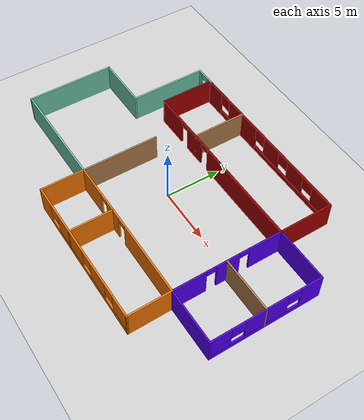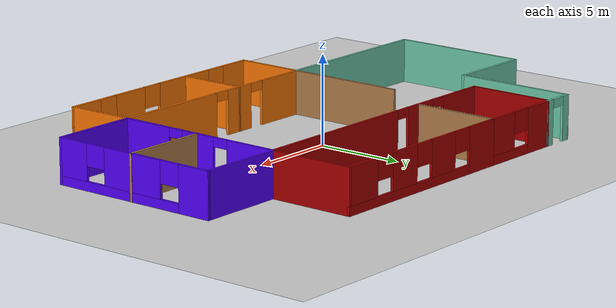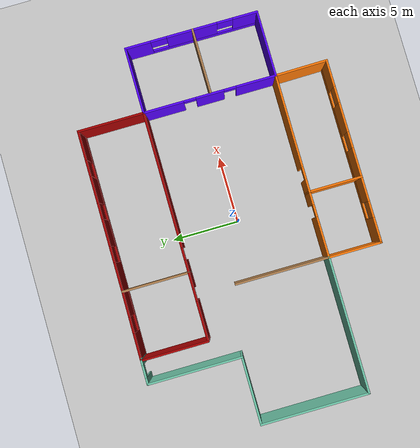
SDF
<sdf version="1.6">
 <world name="default">
  <model name="ground_plane">
   <static>1</static>
   <link name="link">
    <collision name="collision">
     <geometry><plane><normal>0 0 1</normal><size>100 100</size></plane></geometry>
     <surface>
      <contact><collide_bitmask>65535</collide_bitmask></contact>
      <friction><ode><mu>100</mu><mu2>50</mu2></ode></friction>
     </surface>
    </collision>
    <visual name="visual">
     <cast_shadows>0</cast_shadows>
     <geometry><plane><normal>0 0 1</normal><size>100 100</size></plane></geometry>
     <material>
      <script><uri>file://media/materials/scripts/gazebo.material</uri><name>Gazebo/Grey</name></script>
     </material>
    </visual>
   </link>
  </model>
  <model name="Building">
   <link name="Wall_10">
    <collision name="Wall_10_Collision">
     <geometry><box><size>5 0.15 2.5</size></box></geometry>
     <pose>0 0 1.25 0 -0 0</pose>
    </collision>
    <visual name="Wall_10_Visual">
     <pose>0 0 1.25 0 -0 0</pose>
     <geometry><box><size>5 0.15 2.5</size></box></geometry>
     <material>
      <script><uri>file://media/materials/scripts/gazebo.material</uri><name>Gazebo/Grey</name></script>
      <ambient>0.666667 0 0 1</ambient>
     </material>
     <meta><layer>0</layer></meta>
    </visual>
    <pose>9.27018 6.82319 0 0 0 -1.5708</pose>
   </link>
   <link name="Wall_11">
    <collision name="Wall_11_Collision">
     <geometry><box><size>5 0.15 2.5</size></box></geometry>
     <pose>0 0 1.25 0 -0 0</pose>
    </collision>
    <visual name="Wall_11_Visual">
     <pose>0 0 1.25 0 -0 0</pose>
     <geometry><box><size>5 0.15 2.5</size></box></geometry>
     <material>
      <script><uri>file://media/materials/scripts/gazebo.material</uri><name>Gazebo/Grey</name></script>
      <ambient>0.333333 0 1 1</ambient>
     </material>
     <meta><layer>0</layer></meta>
    </visual>
    <pose>11.6952 4.39843 0 0 -0 9.8e-05</pose>
   </link>
   <link name="Wall_12">
    <pose>14.1202 -0.52633 0 0 0 -1.5708</pose>
    <visual name="Wall_12_Visual_0">
     <pose>-4.03442 0 1.25 0 -0 0</pose>
     <geometry><box><size>1.93115 0.15 2.5</size></box></geometry>
     <material>
      <script><uri>file://media/materials/scripts/gazebo.material</uri><name>Gazebo/Grey</name></script>
      <ambient>0.333333 0 1 1</ambient>
     </material>
     <meta><layer>0</layer></meta>
    </visual>
    <collision name="Wall_12_Collision_0">
     <geometry><box><size>1.93115 0.15 2.5</size></box></geometry>
     <pose>-4.03442 0 1.25 0 -0 0</pose>
    </collision>
    <visual name="Wall_12_Visual_1">
     <pose>0.965577 0 0.25 0 -0 0</pose>
     <geometry><box><size>8.06885 0.15 0.5</size></box></geometry>
     <material>
      <script><uri>file://media/materials/scripts/gazebo.material</uri><name>Gazebo/Grey</name></script>
      <ambient>0.333333 0 1 1</ambient>
     </material>
     <meta><layer>0</layer></meta>
    </visual>
    <collision name="Wall_12_Collision_1">
     <geometry><box><size>8.06885 0.15 0.5</size></box></geometry>
     <pose>0.965577 0 0.25 0 -0 0</pose>
    </collision>
    <visual name="Wall_12_Visual_2">
     <pose>0.015256 0 1.5 0 -0 0</pose>
     <geometry><box><size>3.7682 0.15 2</size></box></geometry>
     <material>
      <script><uri>file://media/materials/scripts/gazebo.material</uri><name>Gazebo/Grey</name></script>
      <ambient>0.333333 0 1 1</ambient>
     </material>
     <meta><layer>0</layer></meta>
    </visual>
    <collision name="Wall_12_Collision_2">
     <geometry><box><size>3.7682 0.15 2</size></box></geometry>
     <pose>0.015256 0 1.5 0 -0 0</pose>
    </collision>
    <visual name="Wall_12_Visual_3">
     <pose>4.04968 0 1.5 0 -0 0</pose>
     <geometry><box><size>1.90064 0.15 2</size></box></geometry>
     <material>
      <script><uri>file://media/materials/scripts/gazebo.material</uri><name>Gazebo/Grey</name></script>
      <ambient>0.333333 0 1 1</ambient>
     </material>
     <meta><layer>0</layer></meta>
    </visual>
    <collision name="Wall_12_Collision_3">
     <geometry><box><size>1.90064 0.15 2</size></box></geometry>
     <pose>4.04968 0 1.5 0 -0 0</pose>
    </collision>
    <visual name="Wall_12_Visual_4">
     <pose>-2.46885 0 1.9 0 -0 0</pose>
     <geometry><box><size>1.2 0.15 1.2</size></box></geometry>
     <material>
      <script><uri>file://media/materials/scripts/gazebo.material</uri><name>Gazebo/Grey</name></script>
      <ambient>0.333333 0 1 1</ambient>
     </material>
     <meta><layer>0</layer></meta>
    </visual>
    <collision name="Wall_12_Collision_4">
     <geometry><box><size>1.2 0.15 1.2</size></box></geometry>
     <pose>-2.46885 0 1.9 0 -0 0</pose>
    </collision>
    <visual name="Wall_12_Visual_5">
     <pose>2.49936 0 1.9 0 -0 0</pose>
     <geometry><box><size>1.2 0.15 1.2</size></box></geometry>
     <material>
      <script><uri>file://media/materials/scripts/gazebo.material</uri><name>Gazebo/Grey</name></script>
      <ambient>0.333333 0 1 1</ambient>
     </material>
     <meta><layer>0</layer></meta>
    </visual>
    <collision name="Wall_12_Collision_5">
     <geometry><box><size>1.2 0.15 1.2</size></box></geometry>
     <pose>2.49936 0 1.9 0 -0 0</pose>
    </collision>
   </link>
   <link name="Wall_13">
    <collision name="Wall_13_Collision">
     <geometry><box><size>5 0.15 2.5</size></box></geometry>
     <pose>0 0 1.25 0 -0 0</pose>
    </collision>
    <visual name="Wall_13_Visual">
     <pose>0 0 1.25 0 -0 0</pose>
     <geometry><box><size>5 0.15 2.5</size></box></geometry>
     <material>
      <script><uri>file://media/materials/scripts/gazebo.material</uri><name>Gazebo/Grey</name></script>
      <ambient>0.333333 0 1 1</ambient>
     </material>
     <meta><layer>0</layer></meta>
    </visual>
    <pose>11.6952 -5.45133 0 0 -0 3.14159</pose>
   </link>
   <link name="Wall_15">
    <collision name="Wall_15_Collision">
     <geometry><box><size>5 0.15 2.5</size></box></geometry>
     <pose>0 0 1.25 0 -0 0</pose>
    </collision>
    <visual name="Wall_15_Visual">
     <pose>0 0 1.25 0 -0 0</pose>
     <geometry><box><size>5 0.15 2.5</size></box></geometry>
     <material>
      <script><uri>file://media/materials/scripts/gazebo.material</uri><name>Gazebo/Grey</name></script>
      <ambient>0.666667 0 0 1</ambient>
     </material>
     <meta><layer>0</layer></meta>
    </visual>
    <pose>-7.57982 6.82319 0 0 0 -1.5708</pose>
   </link>
   <link name="Wall_17">
    <pose>0.845177 4.39819 0 0 -0 0</pose>
    <visual name="Wall_17_Visual_0">
     <pose>-6.99749 0 1.25 0 -0 0</pose>
     <geometry><box><size>3.00503 0.15 2.5</size></box></geometry>
     <material>
      <script><uri>file://media/materials/scripts/gazebo.material</uri><name>Gazebo/Grey</name></script>
      <ambient>0.666667 0 0 1</ambient>
     </material>
     <meta><layer>0</layer></meta>
    </visual>
    <collision name="Wall_17_Collision_0">
     <geometry><box><size>3.00503 0.15 2.5</size></box></geometry>
     <pose>-6.99749 0 1.25 0 -0 0</pose>
    </collision>
    <visual name="Wall_17_Visual_1">
     <pose>-3.538 0 1.25 0 -0 0</pose>
     <geometry><box><size>2.11394 0.15 2.5</size></box></geometry>
     <material>
      <script><uri>file://media/materials/scripts/gazebo.material</uri><name>Gazebo/Grey</name></script>
      <ambient>0.666667 0 0 1</ambient>
     </material>
     <meta><layer>0</layer></meta>
    </visual>
    <collision name="Wall_17_Collision_1">
     <geometry><box><size>2.11394 0.15 2.5</size></box></geometry>
     <pose>-3.538 0 1.25 0 -0 0</pose>
    </collision>
    <visual name="Wall_17_Visual_2">
     <pose>3.45948 0 1.25 0 -0 0</pose>
     <geometry><box><size>10.081 0.15 2.5</size></box></geometry>
     <material>
      <script><uri>file://media/materials/scripts/gazebo.material</uri><name>Gazebo/Grey</name></script>
      <ambient>0.666667 0 0 1</ambient>
     </material>
     <meta><layer>0</layer></meta>
    </visual>
    <collision name="Wall_17_Collision_2">
     <geometry><box><size>10.081 0.15 2.5</size></box></geometry>
     <pose>3.45948 0 1.25 0 -0 0</pose>
    </collision>
    <visual name="Wall_17_Visual_3">
     <pose>-5.04497 0 2.25 0 -0 0</pose>
     <geometry><box><size>0.9 0.15 0.5</size></box></geometry>
     <material>
      <script><uri>file://media/materials/scripts/gazebo.material</uri><name>Gazebo/Grey</name></script>
      <ambient>0.666667 0 0 1</ambient>
     </material>
     <meta><layer>0</layer></meta>
    </visual>
    <collision name="Wall_17_Collision_3">
     <geometry><box><size>0.9 0.15 0.5</size></box></geometry>
     <pose>-5.04497 0 2.25 0 -0 0</pose>
    </collision>
    <visual name="Wall_17_Visual_4">
     <pose>-2.03103 0 2.25 0 -0 0</pose>
     <geometry><box><size>0.9 0.15 0.5</size></box></geometry>
     <material>
      <script><uri>file://media/materials/scripts/gazebo.material</uri><name>Gazebo/Grey</name></script>
      <ambient>0.666667 0 0 1</ambient>
     </material>
     <meta><layer>0</layer></meta>
    </visual>
    <collision name="Wall_17_Collision_4">
     <geometry><box><size>0.9 0.15 0.5</size></box></geometry>
     <pose>-2.03103 0 2.25 0 -0 0</pose>
    </collision>
   </link>
   <link name="Wall_19">
    <collision name="Wall_19_Collision">
     <geometry><box><size>5 0.15 2.5</size></box></geometry>
     <pose>0 0 1.25 0 -0 0</pose>
    </collision>
    <visual name="Wall_19_Visual">
     <pose>0 0 1.25 0 -0 0</pose>
     <geometry><box><size>5 0.15 2.5</size></box></geometry>
     <material>
      <script><uri>file://media/materials/scripts/gazebo.material</uri><name>Gazebo/Wood</name></script>
      <ambient>0.666667 0 0 1</ambient>
     </material>
     <meta><layer>0</layer></meta>
    </visual>
    <pose>-2.57982 6.82319 0 0 0 -1.5708</pose>
   </link>
   <link name="Wall_22">
    <collision name="Wall_22_Collision">
     <geometry><box><size>7 0.15 2.5</size></box></geometry>
     <pose>0 0 1.25 0 -0 0</pose>
    </collision>
    <visual name="Wall_22_Visual">
     <pose>0 0 1.25 0 -0 0</pose>
     <geometry><box><size>7 0.15 2.5</size></box></geometry>
     <material>
      <script><uri>file://media/materials/scripts/gazebo.material</uri><name>Gazebo/Grey</name></script>
      <ambient>0.435294 0.796078 0.67451 1</ambient>
     </material>
     <meta><layer>0</layer></meta>
    </visual>
    <pose>-9.27982 5.84632 0 0 0 -1.5708</pose>
   </link>
   <link name="Wall_23">
    <collision name="Wall_23_Collision">
     <geometry><box><size>5 0.15 2.5</size></box></geometry>
     <pose>0 0 1.25 0 -0 0</pose>
    </collision>
    <visual name="Wall_23_Visual">
     <pose>0 0 1.25 0 -0 0</pose>
     <geometry><box><size>5 0.15 2.5</size></box></geometry>
     <material>
      <script><uri>file://media/materials/scripts/gazebo.material</uri><name>Gazebo/Grey</name></script>
      <ambient>0.435294 0.796078 0.67451 1</ambient>
     </material>
     <meta><layer>0</layer></meta>
    </visual>
    <pose>-11.7048 2.42132 0 0 -0 3.14159</pose>
   </link>
   <link name="Wall_24">
    <collision name="Wall_24_Collision">
     <geometry><box><size>8 0.15 2.5</size></box></geometry>
     <pose>0 0 1.25 0 -0 0</pose>
    </collision>
    <visual name="Wall_24_Visual">
     <pose>0 0 1.25 0 -0 0</pose>
     <geometry><box><size>8 0.15 2.5</size></box></geometry>
     <material>
      <script><uri>file://media/materials/scripts/gazebo.material</uri><name>Gazebo/Grey</name></script>
      <ambient>0.435294 0.796078 0.67451 1</ambient>
     </material>
     <meta><layer>0</layer></meta>
    </visual>
    <pose>-14.1298 -1.50368 0 0 0 -1.5708</pose>
   </link>
   <link name="Wall_25">
    <collision name="Wall_25_Collision">
     <geometry><box><size>10 0.15 2.5</size></box></geometry>
     <pose>0 0 1.25 0 -0 0</pose>
    </collision>
    <visual name="Wall_25_Visual">
     <pose>0 0 1.25 0 -0 0</pose>
     <geometry><box><size>10 0.15 2.5</size></box></geometry>
     <material>
      <script><uri>file://media/materials/scripts/gazebo.material</uri><name>Gazebo/Grey</name></script>
      <ambient>0.435294 0.796078 0.67451 1</ambient>
     </material>
     <meta><layer>0</layer></meta>
    </visual>
    <pose>-9.20482 -5.42868 0 0 -0 0</pose>
   </link>
   <link name="Wall_28">
    <collision name="Wall_28_Collision">
     <geometry><box><size>7 0.15 2.5</size></box></geometry>
     <pose>0 0 1.25 0 -0 0</pose>
    </collision>
    <visual name="Wall_28_Visual">
     <pose>0 0 1.25 0 -0 0</pose>
     <geometry><box><size>7 0.15 2.5</size></box></geometry>
     <material>
      <script><uri>file://media/materials/scripts/gazebo.material</uri><name>Gazebo/Wood</name></script>
      <ambient>1 1 1 1</ambient>
     </material>
     <meta><layer>0</layer></meta>
    </visual>
    <pose>-4.28105 -1.99466 0 0 -0 1.5708</pose>
   </link>
   <link name="Wall_30">
    <pose>9.27018 -0.526806 0 0 0 -1.5708</pose>
    <visual name="Wall_30_Visual_0">
     <pose>-3.46998 0 1.25 0 -0 0</pose>
     <geometry><box><size>3.06003 0.15 2.5</size></box></geometry>
     <material>
      <script><uri>file://media/materials/scripts/gazebo.material</uri><name>Gazebo/Grey</name></script>
      <ambient>0.333333 0 1 1</ambient>
     </material>
     <meta><layer>0</layer></meta>
    </visual>
    <collision name="Wall_30_Collision_0">
     <geometry><box><size>3.06003 0.15 2.5</size></box></geometry>
     <pose>-3.46998 0 1.25 0 -0 0</pose>
    </collision>
    <visual name="Wall_30_Visual_1">
     <pose>0.01043 0 1.25 0 -0 0</pose>
     <geometry><box><size>2.10079 0.15 2.5</size></box></geometry>
     <material>
      <script><uri>file://media/materials/scripts/gazebo.material</uri><name>Gazebo/Grey</name></script>
      <ambient>0.333333 0 1 1</ambient>
     </material>
     <meta><layer>0</layer></meta>
    </visual>
    <collision name="Wall_30_Collision_1">
     <geometry><box><size>2.10079 0.15 2.5</size></box></geometry>
     <pose>0.01043 0 1.25 0 -0 0</pose>
    </collision>
    <visual name="Wall_30_Visual_2">
     <pose>3.48041 0 1.25 0 -0 0</pose>
     <geometry><box><size>3.03917 0.15 2.5</size></box></geometry>
     <material>
      <script><uri>file://media/materials/scripts/gazebo.material</uri><name>Gazebo/Grey</name></script>
      <ambient>0.333333 0 1 1</ambient>
     </material>
     <meta><layer>0</layer></meta>
    </visual>
    <collision name="Wall_30_Collision_2">
     <geometry><box><size>3.03917 0.15 2.5</size></box></geometry>
     <pose>3.48041 0 1.25 0 -0 0</pose>
    </collision>
    <visual name="Wall_30_Visual_3">
     <pose>-1.48997 0 2.25 0 -0 0</pose>
     <geometry><box><size>0.9 0.15 0.5</size></box></geometry>
     <material>
      <script><uri>file://media/materials/scripts/gazebo.material</uri><name>Gazebo/Grey</name></script>
      <ambient>0.333333 0 1 1</ambient>
     </material>
     <meta><layer>0</layer></meta>
    </visual>
    <collision name="Wall_30_Collision_3">
     <geometry><box><size>0.9 0.15 0.5</size></box></geometry>
     <pose>-1.48997 0 2.25 0 -0 0</pose>
    </collision>
    <visual name="Wall_30_Visual_4">
     <pose>1.51083 0 2.25 0 -0 0</pose>
     <geometry><box><size>0.9 0.15 0.5</size></box></geometry>
     <material>
      <script><uri>file://media/materials/scripts/gazebo.material</uri><name>Gazebo/Grey</name></script>
      <ambient>0.333333 0 1 1</ambient>
     </material>
     <meta><layer>0</layer></meta>
    </visual>
    <collision name="Wall_30_Collision_4">
     <geometry><box><size>0.9 0.15 0.5</size></box></geometry>
     <pose>1.51083 0 2.25 0 -0 0</pose>
    </collision>
   </link>
   <link name="Wall_32">
    <collision name="Wall_32_Collision">
     <geometry><box><size>5 0.15 2.5</size></box></geometry>
     <pose>0 0 1.25 0 -0 0</pose>
    </collision>
    <visual name="Wall_32_Visual">
     <pose>0 0 1.25 0 -0 0</pose>
     <geometry><box><size>5 0.15 2.5</size></box></geometry>
     <material>
      <script><uri>file://media/materials/scripts/gazebo.material</uri><name>Gazebo/Wood</name></script>
      <ambient>0.333333 0.333333 1 1</ambient>
     </material>
     <meta><layer>0</layer></meta>
    </visual>
    <pose>11.7048 -0.619519 0 0 -0 0</pose>
   </link>
   <link name="Wall_38">
    <collision name="Wall_38_Collision">
     <geometry><box><size>4 0.15 2.5</size></box></geometry>
     <pose>0 0 1.25 0 -0 0</pose>
    </collision>
    <visual name="Wall_38_Visual">
     <pose>0 0 1.25 0 -0 0</pose>
     <geometry><box><size>4 0.15 2.5</size></box></geometry>
     <material>
      <script><uri>file://media/materials/scripts/gazebo.material</uri><name>Gazebo/Grey</name></script>
      <ambient>0.996078 0.47451 0.0196078 1</ambient>
     </material>
     <meta><layer>0</layer></meta>
    </visual>
    <pose>-4.28105 -7.34466 0 0 0 -1.5708</pose>
   </link>
   <link name="Wall_39">
    <pose>2.51895 -9.26966 0 0 -0 0</pose>
    <visual name="Wall_39_Visual_0">
     <pose>-5.91598 0 1.25 0 -0 0</pose>
     <geometry><box><size>1.91805 0.15 2.5</size></box></geometry>
     <material>
      <script><uri>file://media/materials/scripts/gazebo.material</uri><name>Gazebo/Grey</name></script>
      <ambient>0.996078 0.47451 0.0196078 1</ambient>
     </material>
     <meta><layer>0</layer></meta>
    </visual>
    <collision name="Wall_39_Collision_0">
     <geometry><box><size>1.91805 0.15 2.5</size></box></geometry>
     <pose>-5.91598 0 1.25 0 -0 0</pose>
    </collision>
    <visual name="Wall_39_Visual_1">
     <pose>0.959024 0 0.25 0 -0 0</pose>
     <geometry><box><size>11.832 0.15 0.5</size></box></geometry>
     <material>
      <script><uri>file://media/materials/scripts/gazebo.material</uri><name>Gazebo/Grey</name></script>
      <ambient>0.996078 0.47451 0.0196078 1</ambient>
     </material>
     <meta><layer>0</layer></meta>
    </visual>
    <collision name="Wall_39_Collision_1">
     <geometry><box><size>11.832 0.15 0.5</size></box></geometry>
     <pose>0.959024 0 0.25 0 -0 0</pose>
    </collision>
    <visual name="Wall_39_Visual_2">
     <pose>-1.77131 0 1.5 0 -0 0</pose>
     <geometry><box><size>3.97128 0.15 2</size></box></geometry>
     <material>
      <script><uri>file://media/materials/scripts/gazebo.material</uri><name>Gazebo/Grey</name></script>
      <ambient>0.996078 0.47451 0.0196078 1</ambient>
     </material>
     <meta><layer>0</layer></meta>
    </visual>
    <collision name="Wall_39_Collision_2">
     <geometry><box><size>3.97128 0.15 2</size></box></geometry>
     <pose>-1.77131 0 1.5 0 -0 0</pose>
    </collision>
    <visual name="Wall_39_Visual_3">
     <pose>2.5205 0 1.5 0 -0 0</pose>
     <geometry><box><size>2.21234 0.15 2</size></box></geometry>
     <material>
      <script><uri>file://media/materials/scripts/gazebo.material</uri><name>Gazebo/Grey</name></script>
      <ambient>0.996078 0.47451 0.0196078 1</ambient>
     </material>
     <meta><layer>0</layer></meta>
    </visual>
    <collision name="Wall_39_Collision_3">
     <geometry><box><size>2.21234 0.15 2</size></box></geometry>
     <pose>2.5205 0 1.5 0 -0 0</pose>
    </collision>
    <visual name="Wall_39_Visual_4">
     <pose>5.85083 0 1.5 0 -0 0</pose>
     <geometry><box><size>2.04833 0.15 2</size></box></geometry>
     <material>
      <script><uri>file://media/materials/scripts/gazebo.material</uri><name>Gazebo/Grey</name></script>
      <ambient>0.996078 0.47451 0.0196078 1</ambient>
     </material>
     <meta><layer>0</layer></meta>
    </visual>
    <collision name="Wall_39_Collision_4">
     <geometry><box><size>2.04833 0.15 2</size></box></geometry>
     <pose>5.85083 0 1.5 0 -0 0</pose>
    </collision>
    <visual name="Wall_39_Visual_5">
     <pose>-4.35695 0 1.9 0 -0 0</pose>
     <geometry><box><size>1.2 0.15 1.2</size></box></geometry>
     <material>
      <script><uri>file://media/materials/scripts/gazebo.material</uri><name>Gazebo/Grey</name></script>
      <ambient>0.996078 0.47451 0.0196078 1</ambient>
     </material>
     <meta><layer>0</layer></meta>
    </visual>
    <collision name="Wall_39_Collision_5">
     <geometry><box><size>1.2 0.15 1.2</size></box></geometry>
     <pose>-4.35695 0 1.9 0 -0 0</pose>
    </collision>
    <visual name="Wall_39_Visual_6">
     <pose>0.814326 0 1.9 0 -0 0</pose>
     <geometry><box><size>1.2 0.15 1.2</size></box></geometry>
     <material>
      <script><uri>file://media/materials/scripts/gazebo.material</uri><name>Gazebo/Grey</name></script>
      <ambient>0.996078 0.47451 0.0196078 1</ambient>
     </material>
     <meta><layer>0</layer></meta>
    </visual>
    <collision name="Wall_39_Collision_6">
     <geometry><box><size>1.2 0.15 1.2</size></box></geometry>
     <pose>0.814326 0 1.9 0 -0 0</pose>
    </collision>
    <visual name="Wall_39_Visual_7">
     <pose>4.22667 0 1.9 0 -0 0</pose>
     <geometry><box><size>1.2 0.15 1.2</size></box></geometry>
     <material>
      <script><uri>file://media/materials/scripts/gazebo.material</uri><name>Gazebo/Grey</name></script>
      <ambient>0.996078 0.47451 0.0196078 1</ambient>
     </material>
     <meta><layer>0</layer></meta>
    </visual>
    <collision name="Wall_39_Collision_7">
     <geometry><box><size>1.2 0.15 1.2</size></box></geometry>
     <pose>4.22667 0 1.9 0 -0 0</pose>
    </collision>
   </link>
   <link name="Wall_40">
    <collision name="Wall_40_Collision">
     <geometry><box><size>3.96816 0.15 2.5</size></box></geometry>
     <pose>0 0 1.25 0 -0 0</pose>
    </collision>
    <visual name="Wall_40_Visual">
     <pose>0 0 1.25 0 -0 0</pose>
     <geometry><box><size>3.96816 0.15 2.5</size></box></geometry>
     <material>
      <script><uri>file://media/materials/scripts/gazebo.material</uri><name>Gazebo/Grey</name></script>
      <ambient>0.996078 0.47451 0.0196078 1</ambient>
     </material>
     <meta><layer>0</layer></meta>
    </visual>
    <pose>9.29456 -7.36073 0 0 -0 1.58357</pose>
   </link>
   <link name="Wall_42">
    <pose>-1.85605 -5.41965 0 0 -0 0</pose>
    <visual name="Wall_42_Visual_0">
     <pose>-0.965225 0 1.25 0 -0 0</pose>
     <geometry><box><size>3.06955 0.15 2.5</size></box></geometry>
     <material>
      <script><uri>file://media/materials/scripts/gazebo.material</uri><name>Gazebo/Grey</name></script>
      <ambient>0.996078 0.47451 0.0196078 1</ambient>
     </material>
     <meta><layer>0</layer></meta>
    </visual>
    <collision name="Wall_42_Collision_0">
     <geometry><box><size>3.06955 0.15 2.5</size></box></geometry>
     <pose>-0.965225 0 1.25 0 -0 0</pose>
    </collision>
    <visual name="Wall_42_Visual_1">
     <pose>1.98477 0 1.25 0 -0 0</pose>
     <geometry><box><size>1.03045 0.15 2.5</size></box></geometry>
     <material>
      <script><uri>file://media/materials/scripts/gazebo.material</uri><name>Gazebo/Grey</name></script>
      <ambient>0.996078 0.47451 0.0196078 1</ambient>
     </material>
     <meta><layer>0</layer></meta>
    </visual>
    <collision name="Wall_42_Collision_1">
     <geometry><box><size>1.03045 0.15 2.5</size></box></geometry>
     <pose>1.98477 0 1.25 0 -0 0</pose>
    </collision>
    <visual name="Wall_42_Visual_2">
     <pose>1.01955 0 2.25 0 -0 0</pose>
     <geometry><box><size>0.9 0.15 0.5</size></box></geometry>
     <material>
      <script><uri>file://media/materials/scripts/gazebo.material</uri><name>Gazebo/Grey</name></script>
      <ambient>0.996078 0.47451 0.0196078 1</ambient>
     </material>
     <meta><layer>0</layer></meta>
    </visual>
    <collision name="Wall_42_Collision_2">
     <geometry><box><size>0.9 0.15 0.5</size></box></geometry>
     <pose>1.01955 0 2.25 0 -0 0</pose>
    </collision>
   </link>
   <link name="Wall_43">
    <pose>4.91956 -5.43573 0 0 0 -0.003695</pose>
    <visual name="Wall_43_Visual_0">
     <pose>-3.91633 0 1.25 0 -0 0</pose>
     <geometry><box><size>1.01862 0.15 2.5</size></box></geometry>
     <material>
      <script><uri>file://media/materials/scripts/gazebo.material</uri><name>Gazebo/Grey</name></script>
      <ambient>0.996078 0.47451 0.0196078 1</ambient>
     </material>
     <meta><layer>0</layer></meta>
    </visual>
    <collision name="Wall_43_Collision_0">
     <geometry><box><size>1.01862 0.15 2.5</size></box></geometry>
     <pose>-3.91633 0 1.25 0 -0 0</pose>
    </collision>
    <visual name="Wall_43_Visual_1">
     <pose>0.959309 0 1.25 0 -0 0</pose>
     <geometry><box><size>6.93267 0.15 2.5</size></box></geometry>
     <material>
      <script><uri>file://media/materials/scripts/gazebo.material</uri><name>Gazebo/Grey</name></script>
      <ambient>0.996078 0.47451 0.0196078 1</ambient>
     </material>
     <meta><layer>0</layer></meta>
    </visual>
    <collision name="Wall_43_Collision_1">
     <geometry><box><size>6.93267 0.15 2.5</size></box></geometry>
     <pose>0.959309 0 1.25 0 -0 0</pose>
    </collision>
    <visual name="Wall_43_Visual_2">
     <pose>-2.95702 0 2.25 0 -0 0</pose>
     <geometry><box><size>0.9 0.15 0.5</size></box></geometry>
     <material>
      <script><uri>file://media/materials/scripts/gazebo.material</uri><name>Gazebo/Grey</name></script>
      <ambient>0.996078 0.47451 0.0196078 1</ambient>
     </material>
     <meta><layer>0</layer></meta>
    </visual>
    <collision name="Wall_43_Collision_2">
     <geometry><box><size>0.9 0.15 0.5</size></box></geometry>
     <pose>-2.95702 0 2.25 0 -0 0</pose>
    </collision>
   </link>
   <link name="Wall_45">
    <collision name="Wall_45_Collision">
     <geometry><box><size>4 0.15 2.5</size></box></geometry>
     <pose>0 0 1.25 0 -0 0</pose>
    </collision>
    <visual name="Wall_45_Visual">
     <pose>0 0 1.25 0 -0 0</pose>
     <geometry><box><size>4 0.15 2.5</size></box></geometry>
     <material>
      <script><uri>file://media/materials/scripts/gazebo.material</uri><name>Gazebo/Grey</name></script>
      <ambient>0.996078 0.47451 0.0196078 1</ambient>
     </material>
     <meta><layer>0</layer></meta>
    </visual>
    <pose>0.574364 -7.34668 0 0 0 -1.5708</pose>
   </link>
   <link name="Wall_7">
    <pose>-8.35482 9.27132 0 0 -0 0</pose>
    <visual name="Wall_7_Visual_0">
     <pose>-0.727539 0 1.25 0 -0 0</pose>
     <geometry><box><size>0.544922 0.15 2.5</size></box></geometry>
     <material>
      <script><uri>file://media/materials/scripts/gazebo.material</uri><name>Gazebo/Grey</name></script>
      <ambient>0.435294 0.796078 0.67451 1</ambient>
     </material>
     <meta><layer>0</layer></meta>
    </visual>
    <collision name="Wall_7_Collision_0">
     <geometry><box><size>0.544922 0.15 2.5</size></box></geometry>
     <pose>-0.727539 0 1.25 0 -0 0</pose>
    </collision>
    <visual name="Wall_7_Visual_1">
     <pose>0.722461 0 1.25 0 -0 0</pose>
     <geometry><box><size>0.555078 0.15 2.5</size></box></geometry>
     <material>
      <script><uri>file://media/materials/scripts/gazebo.material</uri><name>Gazebo/Grey</name></script>
      <ambient>0.435294 0.796078 0.67451 1</ambient>
     </material>
     <meta><layer>0</layer></meta>
    </visual>
    <collision name="Wall_7_Collision_1">
     <geometry><box><size>0.555078 0.15 2.5</size></box></geometry>
     <pose>0.722461 0 1.25 0 -0 0</pose>
    </collision>
    <visual name="Wall_7_Visual_2">
     <pose>-0.005078 0 2.25 0 -0 0</pose>
     <geometry><box><size>0.9 0.15 0.5</size></box></geometry>
     <material>
      <script><uri>file://media/materials/scripts/gazebo.material</uri><name>Gazebo/Grey</name></script>
      <ambient>0.435294 0.796078 0.67451 1</ambient>
     </material>
     <meta><layer>0</layer></meta>
    </visual>
    <collision name="Wall_7_Collision_2">
     <geometry><box><size>0.9 0.15 0.5</size></box></geometry>
     <pose>-0.005078 0 2.25 0 -0 0</pose>
    </collision>
   </link>
   <link name="Wall_8">
    <pose>-5.00482 9.25976 0 0 0 -0.004769</pose>
    <visual name="Wall_8_Visual_0">
     <pose>-1.55185 0 1.25 0 -0 0</pose>
     <geometry><box><size>1.8963 0.15 2.5</size></box></geometry>
     <material>
      <script><uri>file://media/materials/scripts/gazebo.material</uri><name>Gazebo/Grey</name></script>
      <ambient>0.666667 0 0 1</ambient>
     </material>
     <meta><layer>0</layer></meta>
    </visual>
    <collision name="Wall_8_Collision_0">
     <geometry><box><size>1.8963 0.15 2.5</size></box></geometry>
     <pose>-1.55185 0 1.25 0 -0 0</pose>
    </collision>
    <visual name="Wall_8_Visual_1">
     <pose>0.948148 0 0.25 0 -0 0</pose>
     <geometry><box><size>3.10371 0.15 0.5</size></box></geometry>
     <material>
      <script><uri>file://media/materials/scripts/gazebo.material</uri><name>Gazebo/Grey</name></script>
      <ambient>0.666667 0 0 1</ambient>
     </material>
     <meta><layer>0</layer></meta>
    </visual>
    <collision name="Wall_8_Collision_1">
     <geometry><box><size>3.10371 0.15 0.5</size></box></geometry>
     <pose>0.948148 0 0.25 0 -0 0</pose>
    </collision>
    <visual name="Wall_8_Visual_2">
     <pose>1.54815 0 1.5 0 -0 0</pose>
     <geometry><box><size>1.9037 0.15 2</size></box></geometry>
     <material>
      <script><uri>file://media/materials/scripts/gazebo.material</uri><name>Gazebo/Grey</name></script>
      <ambient>0.666667 0 0 1</ambient>
     </material>
     <meta><layer>0</layer></meta>
    </visual>
    <collision name="Wall_8_Collision_2">
     <geometry><box><size>1.9037 0.15 2</size></box></geometry>
     <pose>1.54815 0 1.5 0 -0 0</pose>
    </collision>
    <visual name="Wall_8_Visual_3">
     <pose>-0.003705 0 1.9 0 -0 0</pose>
     <geometry><box><size>1.2 0.15 1.2</size></box></geometry>
     <material>
      <script><uri>file://media/materials/scripts/gazebo.material</uri><name>Gazebo/Grey</name></script>
      <ambient>0.666667 0 0 1</ambient>
     </material>
     <meta><layer>0</layer></meta>
    </visual>
    <collision name="Wall_8_Collision_3">
     <geometry><box><size>1.2 0.15 1.2</size></box></geometry>
     <pose>-0.003705 0 1.9 0 -0 0</pose>
    </collision>
   </link>
   <link name="Wall_9">
    <pose>3.34518 9.24819 0 0 -0 0</pose>
    <visual name="Wall_9_Visual_0">
     <pose>-4.89214 0 1.25 0 -0 0</pose>
     <geometry><box><size>2.21571 0.15 2.5</size></box></geometry>
     <material>
      <script><uri>file://media/materials/scripts/gazebo.material</uri><name>Gazebo/Grey</name></script>
      <ambient>0.666667 0 0 1</ambient>
     </material>
     <meta><layer>0</layer></meta>
    </visual>
    <collision name="Wall_9_Collision_0">
     <geometry><box><size>2.21571 0.15 2.5</size></box></geometry>
     <pose>-4.89214 0 1.25 0 -0 0</pose>
    </collision>
    <visual name="Wall_9_Visual_1">
     <pose>1.10786 0 0.25 0 -0 0</pose>
     <geometry><box><size>9.78429 0.15 0.5</size></box></geometry>
     <material>
      <script><uri>file://media/materials/scripts/gazebo.material</uri><name>Gazebo/Grey</name></script>
      <ambient>0.666667 0 0 1</ambient>
     </material>
     <meta><layer>0</layer></meta>
    </visual>
    <collision name="Wall_9_Collision_1">
     <geometry><box><size>9.78429 0.15 0.5</size></box></geometry>
     <pose>1.10786 0 0.25 0 -0 0</pose>
    </collision>
    <visual name="Wall_9_Visual_2">
     <pose>-1.59359 0 1.5 0 -0 0</pose>
     <geometry><box><size>1.98138 0.15 2</size></box></geometry>
     <material>
      <script><uri>file://media/materials/scripts/gazebo.material</uri><name>Gazebo/Grey</name></script>
      <ambient>0.666667 0 0 1</ambient>
     </material>
     <meta><layer>0</layer></meta>
    </visual>
    <collision name="Wall_9_Collision_2">
     <geometry><box><size>1.98138 0.15 2</size></box></geometry>
     <pose>-1.59359 0 1.5 0 -0 0</pose>
    </collision>
    <visual name="Wall_9_Visual_3">
     <pose>1.58779 0 1.5 0 -0 0</pose>
     <geometry><box><size>1.98138 0.15 2</size></box></geometry>
     <material>
      <script><uri>file://media/materials/scripts/gazebo.material</uri><name>Gazebo/Grey</name></script>
      <ambient>0.666667 0 0 1</ambient>
     </material>
     <meta><layer>0</layer></meta>
    </visual>
    <collision name="Wall_9_Collision_3">
     <geometry><box><size>1.98138 0.15 2</size></box></geometry>
     <pose>1.58779 0 1.5 0 -0 0</pose>
    </collision>
    <visual name="Wall_9_Visual_4">
     <pose>4.88924 0 1.5 0 -0 0</pose>
     <geometry><box><size>2.22152 0.15 2</size></box></geometry>
     <material>
      <script><uri>file://media/materials/scripts/gazebo.material</uri><name>Gazebo/Grey</name></script>
      <ambient>0.666667 0 0 1</ambient>
     </material>
     <meta><layer>0</layer></meta>
    </visual>
    <collision name="Wall_9_Collision_4">
     <geometry><box><size>2.22152 0.15 2</size></box></geometry>
     <pose>4.88924 0 1.5 0 -0 0</pose>
    </collision>
    <visual name="Wall_9_Visual_5">
     <pose>-3.18429 0 1.9 0 -0 0</pose>
     <geometry><box><size>1.2 0.15 1.2</size></box></geometry>
     <material>
      <script><uri>file://media/materials/scripts/gazebo.material</uri><name>Gazebo/Grey</name></script>
      <ambient>0.666667 0 0 1</ambient>
     </material>
     <meta><layer>0</layer></meta>
    </visual>
    <collision name="Wall_9_Collision_5">
     <geometry><box><size>1.2 0.15 1.2</size></box></geometry>
     <pose>-3.18429 0 1.9 0 -0 0</pose>
    </collision>
    <visual name="Wall_9_Visual_6">
     <pose>-0.002902 0 1.9 0 -0 0</pose>
     <geometry><box><size>1.2 0.15 1.2</size></box></geometry>
     <material>
      <script><uri>file://media/materials/scripts/gazebo.material</uri><name>Gazebo/Grey</name></script>
      <ambient>0.666667 0 0 1</ambient>
     </material>
     <meta><layer>0</layer></meta>
    </visual>
    <collision name="Wall_9_Collision_6">
     <geometry><box><size>1.2 0.15 1.2</size></box></geometry>
     <pose>-0.002902 0 1.9 0 -0 0</pose>
    </collision>
    <visual name="Wall_9_Visual_7">
     <pose>3.17848 0 1.9 0 -0 0</pose>
     <geometry><box><size>1.2 0.15 1.2</size></box></geometry>
     <material>
      <script><uri>file://media/materials/scripts/gazebo.material</uri><name>Gazebo/Grey</name></script>
      <ambient>0.666667 0 0 1</ambient>
     </material>
     <meta><layer>0</layer></meta>
    </visual>
    <collision name="Wall_9_Collision_7">
     <geometry><box><size>1.2 0.15 1.2</size></box></geometry>
     <pose>3.17848 0 1.9 0 -0 0</pose>
    </collision>
   </link>
   <static>1</static>
  </model>
 </world>
</sdf>
